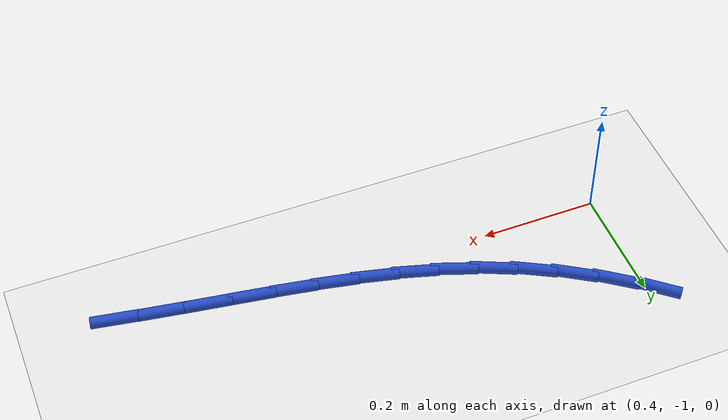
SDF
<sdf version="1.6">
 <world name="default">
  <model name="ground_plane">
   <static>1</static>
   <link name="link">
    <collision name="collision">
     <geometry><plane><normal>0 0 1</normal><size>100 100</size></plane></geometry>
     <surface><friction><ode><mu>100</mu><mu2>50</mu2></ode></friction></surface>
    </collision>
    <visual name="visual">
     <cast_shadows>0</cast_shadows>
     <geometry><plane><normal>0 0 1</normal><size>100 100</size></plane></geometry>
     <material>
      <script><uri>file://media/materials/scripts/gazebo.material</uri><name>Gazebo/WhiteGlow</name></script>
     </material>
    </visual>
   </link>
  </model>
  <model name="line">
   <link name="link_84">
    <pose>1.232621582126038 -1.0526351833052008 0.01 0 1.57 -0.1694945340578838</pose>
    <collision name="collision">
     <geometry><cylinder><radius>0.01</radius><length>0.08</length></cylinder></geometry>
    </collision>
    <visual name="visual">
     <material>
      <script><name>Gazebo/Blue</name><uri>file://media/materials/scripts/gazebo.material</uri></script>
     </material>
     <geometry><cylinder><radius>0.01</radius><length>0.08</length></cylinder></geometry>
    </visual>
   </link>
   <link name="link_85">
    <pose>1.156432148979235 -1.0395963898280436 0.01 0 1.57 -0.15713580067331603</pose>
    <collision name="collision">
     <geometry><cylinder><radius>0.01</radius><length>0.08</length></cylinder></geometry>
    </collision>
    <visual name="visual">
     <material>
      <script><name>Gazebo/Blue</name><uri>file://media/materials/scripts/gazebo.material</uri></script>
     </material>
     <geometry><cylinder><radius>0.01</radius><length>0.08</length></cylinder></geometry>
    </visual>
   </link>
   <link name="link_86">
    <pose>1.0825051295051848 -1.027883243689663 0.01 0 1.57 -0.1511308498687222</pose>
    <collision name="collision">
     <geometry><cylinder><radius>0.01</radius><length>0.08</length></cylinder></geometry>
    </collision>
    <visual name="visual">
     <material>
      <script><name>Gazebo/Blue</name><uri>file://media/materials/scripts/gazebo.material</uri></script>
     </material>
     <geometry><cylinder><radius>0.01</radius><length>0.08</length></cylinder></geometry>
    </visual>
   </link>
   <link name="link_87">
    <pose>1.0108258768804643 -1.0169670600066953 0.01 0 1.57 -0.15541173409354786</pose>
    <collision name="collision">
     <geometry><cylinder><radius>0.01</radius><length>0.08</length></cylinder></geometry>
    </collision>
    <visual name="visual">
     <material>
      <script><name>Gazebo/Blue</name><uri>file://media/materials/scripts/gazebo.material</uri></script>
     </material>
     <geometry><cylinder><radius>0.01</radius><length>0.08</length></cylinder></geometry>
    </visual>
   </link>
   <link name="link_88">
    <pose>0.9412255203361166 -1.0060624136071514 0.01 0 1.57 -0.17084693444844082</pose>
    <collision name="collision">
     <geometry><cylinder><radius>0.01</radius><length>0.08</length></cylinder></geometry>
    </collision>
    <visual name="visual">
     <material>
      <script><name>Gazebo/Blue</name><uri>file://media/materials/scripts/gazebo.material</uri></script>
     </material>
     <geometry><cylinder><radius>0.01</radius><length>0.08</length></cylinder></geometry>
    </visual>
   </link>
   <link name="link_89">
    <pose>0.8735351891031803 -0.9943838793190408 0.01 0 1.57 -0.19809547647008538</pose>
    <collision name="collision">
     <geometry><cylinder><radius>0.01</radius><length>0.08</length></cylinder></geometry>
    </collision>
    <visual name="visual">
     <material>
      <script><name>Gazebo/Blue</name><uri>file://media/materials/scripts/gazebo.material</uri></script>
     </material>
     <geometry><cylinder><radius>0.01</radius><length>0.08</length></cylinder></geometry>
    </visual>
   </link>
   <link name="link_90">
    <pose>0.8075860124126985 -0.9811460319703749 0.01 0 1.57 -0.2374847559787283</pose>
    <collision name="collision">
     <geometry><cylinder><radius>0.01</radius><length>0.08</length></cylinder></geometry>
    </collision>
    <visual name="visual">
     <material>
      <script><name>Gazebo/Blue</name><uri>file://media/materials/scripts/gazebo.material</uri></script>
     </material>
     <geometry><cylinder><radius>0.01</radius><length>0.08</length></cylinder></geometry>
    </visual>
   </link>
   <link name="link_91">
    <pose>0.7432091194957103 -0.965563446389163 0.01 0 1.57 -0.288842687091591</pose>
    <collision name="collision">
     <geometry><cylinder><radius>0.01</radius><length>0.08</length></cylinder></geometry>
    </collision>
    <visual name="visual">
     <material>
      <script><name>Gazebo/Blue</name><uri>file://media/materials/scripts/gazebo.material</uri></script>
     </material>
     <geometry><cylinder><radius>0.01</radius><length>0.08</length></cylinder></geometry>
    </visual>
   </link>
   <link name="link_92">
    <pose>0.6802356395832582 -0.9468506974034161 0.01 0 1.57 -0.3513123918120146</pose>
    <collision name="collision">
     <geometry><cylinder><radius>0.01</radius><length>0.08</length></cylinder></geometry>
    </collision>
    <visual name="visual">
     <material>
      <script><name>Gazebo/Blue</name><uri>file://media/materials/scripts/gazebo.material</uri></script>
     </material>
     <geometry><cylinder><radius>0.01</radius><length>0.08</length></cylinder></geometry>
    </visual>
   </link>
   <link name="link_93">
    <pose>0.618496701906382 -0.9242223598411448 0.01 0 1.57 -0.4230452899224034</pose>
    <collision name="collision">
     <geometry><cylinder><radius>0.01</radius><length>0.08</length></cylinder></geometry>
    </collision>
    <visual name="visual">
     <material>
      <script><name>Gazebo/Blue</name><uri>file://media/materials/scripts/gazebo.material</uri></script>
     </material>
     <geometry><cylinder><radius>0.01</radius><length>0.08</length></cylinder></geometry>
    </visual>
   </link>
   <link name="link_94">
    <pose>0.5578320871574577 -0.8969093221665178 0.01 0 1.57 -0.49703036828500413</pose>
    <collision name="collision">
     <geometry><cylinder><radius>0.01</radius><length>0.08</length></cylinder></geometry>
    </collision>
    <visual name="visual">
     <material>
      <script><name>Gazebo/Blue</name><uri>file://media/materials/scripts/gazebo.material</uri></script>
     </material>
     <geometry><cylinder><radius>0.01</radius><length>0.08</length></cylinder></geometry>
    </visual>
   </link>
   <link name="link_95">
    <pose>0.49834588274722635 -0.8646408630544716 0.01 0 1.57 -0.567623188680564</pose>
    <collision name="collision">
     <geometry><cylinder><radius>0.01</radius><length>0.08</length></cylinder></geometry>
    </collision>
    <visual name="visual">
     <material>
      <script><name>Gazebo/Blue</name><uri>file://media/materials/scripts/gazebo.material</uri></script>
     </material>
     <geometry><cylinder><radius>0.01</radius><length>0.08</length></cylinder></geometry>
    </visual>
   </link>
   <link name="link_96">
    <pose>0.44044884677589163 -0.8277245350524376 0.01 0 1.57 -0.6356013127652984</pose>
    <collision name="collision">
     <geometry><cylinder><radius>0.01</radius><length>0.08</length></cylinder></geometry>
    </collision>
    <visual name="visual">
     <material>
      <script><name>Gazebo/Blue</name><uri>file://media/materials/scripts/gazebo.material</uri></script>
     </material>
     <geometry><cylinder><radius>0.01</radius><length>0.08</length></cylinder></geometry>
    </visual>
   </link>
   <link name="link_97">
    <pose>0.3845689203436612 -0.7865002918478834 0.01 0 1.57 -0.7020178141233061</pose>
    <collision name="collision">
     <geometry><cylinder><radius>0.01</radius><length>0.08</length></cylinder></geometry>
    </collision>
    <visual name="visual">
     <material>
      <script><name>Gazebo/Blue</name><uri>file://media/materials/scripts/gazebo.material</uri></script>
     </material>
     <geometry><cylinder><radius>0.01</radius><length>0.08</length></cylinder></geometry>
    </visual>
   </link>
  </model>
 </world>
</sdf>
